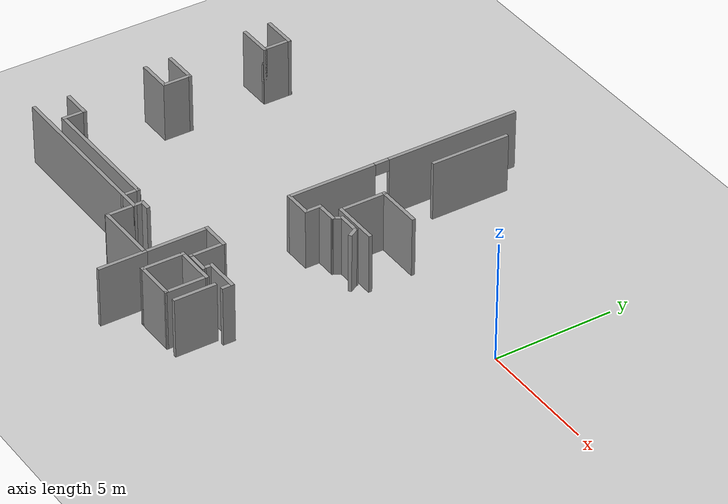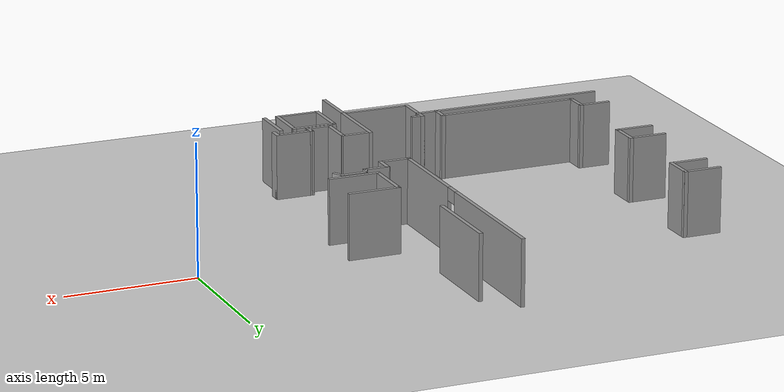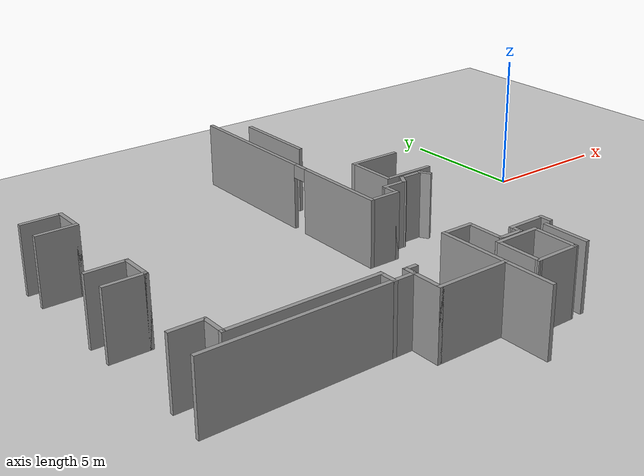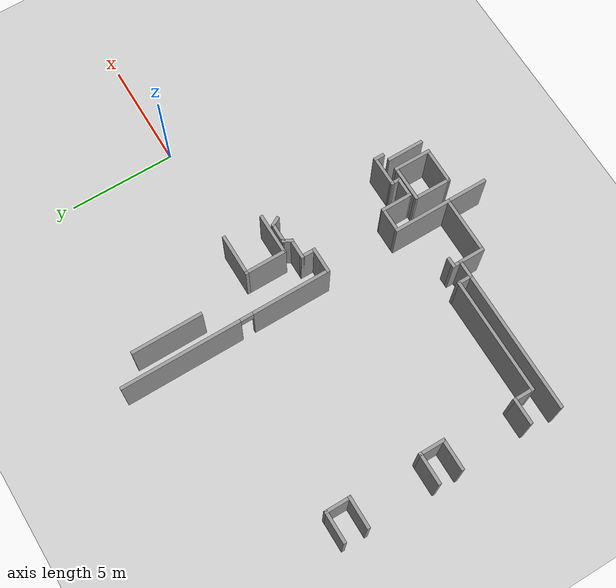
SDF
<sdf version="1.6">
 <world name="default">
  <model name="ground_plane">
   <static>1</static>
   <link name="link">
    <collision name="collision">
     <geometry><plane><normal>0 0 1</normal><size>100 100</size></plane></geometry>
     <surface>
      <contact><collide_bitmask>65535</collide_bitmask></contact>
      <friction><ode><mu>100</mu><mu2>50</mu2></ode></friction>
     </surface>
    </collision>
    <visual name="visual">
     <cast_shadows>0</cast_shadows>
     <geometry><plane><normal>0 0 1</normal><size>100 100</size></plane></geometry>
     <material>
      <script><uri>file://media/materials/scripts/gazebo.material</uri><name>Gazebo/Grey</name></script>
     </material>
    </visual>
   </link>
  </model>
  <model name="Tsudanuma_2-3-with_door">
   <pose>11.7222 12.8329 0 0 -0 0</pose>
   <link name="Wall_1">
    <collision name="Wall_1_Collision">
     <geometry><box><size>7.45363 0.15 2.5</size></box></geometry>
     <pose>0 0 1.25 0 -0 0</pose>
    </collision>
    <visual name="Wall_1_Visual">
     <pose>0 0 1.25 0 -0 0</pose>
     <geometry><box><size>7.45363 0.15 2.5</size></box></geometry>
     <material>
      <script><uri>file://media/materials/scripts/gazebo.material</uri><name>Gazebo/Grey</name></script>
      <ambient>1 1 1 1</ambient>
     </material>
     <meta><layer>0</layer></meta>
    </visual>
    <pose>-27.1739 -20.5586 0 0 -0 -0.00039</pose>
   </link>
   <link name="Wall_143">
    <pose>-20.9574 -10.6327 0 0 -0 -1.5708</pose>
    <visual name="Wall_143_Visual_0">
     <pose>-2.17303 0 1.25 0 -0 0</pose>
     <geometry><box><size>5.65395 0.15 2.5</size></box></geometry>
     <material>
      <script><uri>file://media/materials/scripts/gazebo.material</uri><name>Gazebo/Grey</name></script>
      <ambient>1 1 1 1</ambient>
     </material>
     <meta><layer>0</layer></meta>
    </visual>
    <collision name="Wall_143_Collision_0">
     <geometry><box><size>5.65395 0.15 2.5</size></box></geometry>
     <pose>-2.17303 0 1.25 0 -0 0</pose>
    </collision>
    <visual name="Wall_143_Visual_1">
     <pose>3.12789 0 1.25 0 -0 0</pose>
     <geometry><box><size>3.74423 0.15 2.5</size></box></geometry>
     <material>
      <script><uri>file://media/materials/scripts/gazebo.material</uri><name>Gazebo/Grey</name></script>
      <ambient>1 1 1 1</ambient>
     </material>
     <meta><layer>0</layer></meta>
    </visual>
    <collision name="Wall_143_Collision_1">
     <geometry><box><size>3.74423 0.15 2.5</size></box></geometry>
     <pose>3.12789 0 1.25 0 -0 0</pose>
    </collision>
    <visual name="Wall_143_Visual_2">
     <pose>0.954859 0 2.25 0 -0 0</pose>
     <geometry><box><size>0.601822 0.15 0.5</size></box></geometry>
     <material>
      <script><uri>file://media/materials/scripts/gazebo.material</uri><name>Gazebo/Grey</name></script>
      <ambient>1 1 1 1</ambient>
     </material>
     <meta><layer>0</layer></meta>
    </visual>
    <collision name="Wall_143_Collision_2">
     <geometry><box><size>0.601822 0.15 0.5</size></box></geometry>
     <pose>0.954859 0 2.25 0 -0 0</pose>
    </collision>
   </link>
   <link name="Wall_144">
    <collision name="Wall_144_Collision">
     <geometry><box><size>1.25 0.15 2.5</size></box></geometry>
     <pose>0 0 1.25 0 -0 0</pose>
    </collision>
    <visual name="Wall_144_Visual">
     <pose>0 0 1.25 0 -0 0</pose>
     <geometry><box><size>1.25 0.15 2.5</size></box></geometry>
     <material>
      <script><uri>file://media/materials/scripts/gazebo.material</uri><name>Gazebo/Grey</name></script>
      <ambient>1 1 1 1</ambient>
     </material>
     <meta><layer>0</layer></meta>
    </visual>
    <pose>-20.4074 -15.5577 0 0 -0 0</pose>
   </link>
   <link name="Wall_145">
    <collision name="Wall_145_Collision">
     <geometry><box><size>0.75 0.15 2.5</size></box></geometry>
     <pose>0 0 1.25 0 -0 0</pose>
    </collision>
    <visual name="Wall_145_Visual">
     <pose>0 0 1.25 0 -0 0</pose>
     <geometry><box><size>0.75 0.15 2.5</size></box></geometry>
     <material>
      <script><uri>file://media/materials/scripts/gazebo.material</uri><name>Gazebo/Grey</name></script>
      <ambient>1 1 1 1</ambient>
     </material>
     <meta><layer>0</layer></meta>
    </visual>
    <pose>-19.8574 -15.2577 0 0 -0 1.5708</pose>
   </link>
   <link name="Wall_146">
    <collision name="Wall_146_Collision">
     <geometry><box><size>1 0.15 2.5</size></box></geometry>
     <pose>0 0 1.25 0 -0 0</pose>
    </collision>
    <visual name="Wall_146_Visual">
     <pose>0 0 1.25 0 -0 0</pose>
     <geometry><box><size>1 0.15 2.5</size></box></geometry>
     <material>
      <script><uri>file://media/materials/scripts/gazebo.material</uri><name>Gazebo/Grey</name></script>
      <ambient>1 1 1 1</ambient>
     </material>
     <meta><layer>0</layer></meta>
    </visual>
    <pose>-19.4324 -14.9577 0 0 -0 0</pose>
   </link>
   <link name="Wall_147">
    <collision name="Wall_147_Collision">
     <geometry><box><size>0.5 0.15 2.5</size></box></geometry>
     <pose>0 0 1.25 0 -0 0</pose>
    </collision>
    <visual name="Wall_147_Visual">
     <pose>0 0 1.25 0 -0 0</pose>
     <geometry><box><size>0.5 0.15 2.5</size></box></geometry>
     <material>
      <script><uri>file://media/materials/scripts/gazebo.material</uri><name>Gazebo/Grey</name></script>
      <ambient>1 1 1 1</ambient>
     </material>
     <meta><layer>0</layer></meta>
    </visual>
    <pose>-18.9199 -14.8061 0 0 -0 1.0472</pose>
   </link>
   <link name="Wall_148">
    <collision name="Wall_148_Collision">
     <geometry><box><size>1 0.15 2.5</size></box></geometry>
     <pose>0 0 1.25 0 -0 0</pose>
    </collision>
    <visual name="Wall_148_Visual">
     <pose>0 0 1.25 0 -0 0</pose>
     <geometry><box><size>1 0.15 2.5</size></box></geometry>
     <material>
      <script><uri>file://media/materials/scripts/gazebo.material</uri><name>Gazebo/Grey</name></script>
      <ambient>1 1 1 1</ambient>
     </material>
     <meta><layer>0</layer></meta>
    </visual>
    <pose>-18.4074 -14.6546 0 0 -0 0</pose>
   </link>
   <link name="Wall_149">
    <collision name="Wall_149_Collision">
     <geometry><box><size>0.5 0.15 2.5</size></box></geometry>
     <pose>0 0 1.25 0 -0 0</pose>
    </collision>
    <visual name="Wall_149_Visual">
     <pose>0 0 1.25 0 -0 0</pose>
     <geometry><box><size>0.5 0.15 2.5</size></box></geometry>
     <material>
      <script><uri>file://media/materials/scripts/gazebo.material</uri><name>Gazebo/Grey</name></script>
      <ambient>1 1 1 1</ambient>
     </material>
     <meta><layer>0</layer></meta>
    </visual>
    <pose>-17.8949 -14.8061 0 0 -0 -1.0472</pose>
   </link>
   <link name="Wall_161">
    <collision name="Wall_161_Collision">
     <geometry><box><size>3.34921 0.15 2.5</size></box></geometry>
     <pose>0 0 1.25 0 -0 0</pose>
    </collision>
    <visual name="Wall_161_Visual">
     <pose>0 0 1.25 0 -0 0</pose>
     <geometry><box><size>3.34921 0.15 2.5</size></box></geometry>
     <material>
      <script><uri>file://media/materials/scripts/gazebo.material</uri><name>Gazebo/Grey</name></script>
      <ambient>1 1 1 1</ambient>
     </material>
     <meta><layer>0</layer></meta>
    </visual>
    <pose>-19.8574 -8.40721 0 0 -0 1.5708</pose>
   </link>
   <link name="Wall_176">
    <collision name="Wall_176_Collision">
     <geometry><box><size>2.75 0.15 2.5</size></box></geometry>
     <pose>0 0 1.25 0 -0 0</pose>
    </collision>
    <visual name="Wall_176_Visual">
     <pose>0 0 1.25 0 -0 0</pose>
     <geometry><box><size>2.75 0.15 2.5</size></box></geometry>
     <material>
      <script><uri>file://media/materials/scripts/gazebo.material</uri><name>Gazebo/Grey</name></script>
      <ambient>1 1 1 1</ambient>
     </material>
     <meta><layer>0</layer></meta>
    </visual>
    <pose>-20.9221 -20.36 0 0 -0 1.5708</pose>
   </link>
   <link name="Wall_177">
    <collision name="Wall_177_Collision">
     <geometry><box><size>1.25 0.15 2.5</size></box></geometry>
     <pose>0 0 1.25 0 -0 0</pose>
    </collision>
    <visual name="Wall_177_Visual">
     <pose>0 0 1.25 0 -0 0</pose>
     <geometry><box><size>1.25 0.15 2.5</size></box></geometry>
     <material>
      <script><uri>file://media/materials/scripts/gazebo.material</uri><name>Gazebo/Grey</name></script>
      <ambient>1 1 1 1</ambient>
     </material>
     <meta><layer>0</layer></meta>
    </visual>
    <pose>-20.3721 -19.06 0 0 -0 0</pose>
   </link>
   <link name="Wall_178">
    <collision name="Wall_178_Collision">
     <geometry><box><size>1.49235 0.15 2.5</size></box></geometry>
     <pose>0 0 1.25 0 -0 0</pose>
    </collision>
    <visual name="Wall_178_Visual">
     <pose>0 0 1.25 0 -0 0</pose>
     <geometry><box><size>1.49235 0.15 2.5</size></box></geometry>
     <material>
      <script><uri>file://media/materials/scripts/gazebo.material</uri><name>Gazebo/Grey</name></script>
      <ambient>1 1 1 1</ambient>
     </material>
     <meta><layer>0</layer></meta>
    </visual>
    <pose>-19.8214 -19.7312 0 0 -0 -1.56976</pose>
   </link>
   <link name="Wall_179">
    <collision name="Wall_179_Collision">
     <geometry><box><size>1 0.15 2.5</size></box></geometry>
     <pose>0 0 1.25 0 -0 0</pose>
    </collision>
    <visual name="Wall_179_Visual">
     <pose>0 0 1.25 0 -0 0</pose>
     <geometry><box><size>1 0.15 2.5</size></box></geometry>
     <material>
      <script><uri>file://media/materials/scripts/gazebo.material</uri><name>Gazebo/Grey</name></script>
      <ambient>1 1 1 1</ambient>
     </material>
     <meta><layer>0</layer></meta>
    </visual>
    <pose>-19.3957 -20.4038 0 0 -0 0</pose>
   </link>
   <link name="Wall_180">
    <collision name="Wall_180_Collision">
     <geometry><box><size>0.492355 0.15 2.5</size></box></geometry>
     <pose>0 0 1.25 0 -0 0</pose>
    </collision>
    <visual name="Wall_180_Visual">
     <pose>0 0 1.25 0 -0 0</pose>
     <geometry><box><size>0.492355 0.15 2.5</size></box></geometry>
     <material>
      <script><uri>file://media/materials/scripts/gazebo.material</uri><name>Gazebo/Grey</name></script>
      <ambient>1 1 1 1</ambient>
     </material>
     <meta><layer>0</layer></meta>
    </visual>
    <pose>-18.9714 -20.2312 0 0 -0 1.57485</pose>
   </link>
   <link name="Wall_181">
    <collision name="Wall_181_Collision">
     <geometry><box><size>1.5 0.15 2.5</size></box></geometry>
     <pose>0 0 1.25 0 -0 0</pose>
    </collision>
    <visual name="Wall_181_Visual">
     <pose>0 0 1.25 0 -0 0</pose>
     <geometry><box><size>1.5 0.15 2.5</size></box></geometry>
     <material>
      <script><uri>file://media/materials/scripts/gazebo.material</uri><name>Gazebo/Grey</name></script>
      <ambient>1 1 1 1</ambient>
     </material>
     <meta><layer>0</layer></meta>
    </visual>
    <pose>-18.2971 -20.06 0 0 -0 0</pose>
   </link>
   <link name="Wall_182">
    <collision name="Wall_182_Collision">
     <geometry><box><size>0.502135 0.15 2.5</size></box></geometry>
     <pose>0 0 1.25 0 -0 0</pose>
    </collision>
    <visual name="Wall_182_Visual">
     <pose>0 0 1.25 0 -0 0</pose>
     <geometry><box><size>0.502135 0.15 2.5</size></box></geometry>
     <material>
      <script><uri>file://media/materials/scripts/gazebo.material</uri><name>Gazebo/Grey</name></script>
      <ambient>1 1 1 1</ambient>
     </material>
     <meta><layer>0</layer></meta>
    </visual>
    <pose>-17.6221 -20.2361 0 0 -0 -1.5708</pose>
   </link>
   <link name="Wall_2">
    <collision name="Wall_2_Collision">
     <geometry><box><size>1.25 0.15 2.5</size></box></geometry>
     <pose>0 0 1.25 0 -0 0</pose>
    </collision>
    <visual name="Wall_2_Visual">
     <pose>0 0 1.25 0 -0 0</pose>
     <geometry><box><size>1.25 0.15 2.5</size></box></geometry>
     <material>
      <script><uri>file://media/materials/scripts/gazebo.material</uri><name>Gazebo/Grey</name></script>
      <ambient>1 1 1 1</ambient>
     </material>
     <meta><layer>0</layer></meta>
    </visual>
    <pose>-23.5221 -21.11 0 0 -0 -1.5708</pose>
   </link>
   <link name="Wall_28">
    <collision name="Wall_28_Collision">
     <geometry><box><size>0.5 0.15 2.5</size></box></geometry>
     <pose>0 0 1.25 0 -0 0</pose>
    </collision>
    <visual name="Wall_28_Visual">
     <pose>0 0 1.25 0 -0 0</pose>
     <geometry><box><size>0.5 0.15 2.5</size></box></geometry>
     <material>
      <script><uri>file://media/materials/scripts/gazebo.material</uri><name>Gazebo/Grey</name></script>
      <ambient>1 1 1 1</ambient>
     </material>
     <meta><layer>0</layer></meta>
    </visual>
    <pose>-23.5221 -20.385 0 0 -0 1.5708</pose>
   </link>
   <link name="Wall_29">
    <collision name="Wall_29_Collision">
     <geometry><box><size>0.5 0.15 2.5</size></box></geometry>
     <pose>0 0 1.25 0 -0 0</pose>
    </collision>
    <visual name="Wall_29_Visual">
     <pose>0 0 1.25 0 -0 0</pose>
     <geometry><box><size>0.5 0.15 2.5</size></box></geometry>
     <material>
      <script><uri>file://media/materials/scripts/gazebo.material</uri><name>Gazebo/Grey</name></script>
      <ambient>1 1 1 1</ambient>
     </material>
     <meta><layer>0</layer></meta>
    </visual>
    <pose>-23.3471 -20.21 0 0 -0 0</pose>
   </link>
   <link name="Wall_3">
    <collision name="Wall_3_Collision">
     <geometry><box><size>2.75 0.15 2.5</size></box></geometry>
     <pose>0 0 1.25 0 -0 0</pose>
    </collision>
    <visual name="Wall_3_Visual">
     <pose>0 0 1.25 0 -0 0</pose>
     <geometry><box><size>2.75 0.15 2.5</size></box></geometry>
     <material>
      <script><uri>file://media/materials/scripts/gazebo.material</uri><name>Gazebo/Grey</name></script>
      <ambient>1 1 1 1</ambient>
     </material>
     <meta><layer>0</layer></meta>
    </visual>
    <pose>-22.2221 -21.66 0 0 -0 0</pose>
   </link>
   <link name="Wall_4">
    <collision name="Wall_4_Collision">
     <geometry><box><size>2 0.15 2.5</size></box></geometry>
     <pose>0 0 1.25 0 -0 0</pose>
    </collision>
    <visual name="Wall_4_Visual">
     <pose>0 0 1.25 0 -0 0</pose>
     <geometry><box><size>2 0.15 2.5</size></box></geometry>
     <material>
      <script><uri>file://media/materials/scripts/gazebo.material</uri><name>Gazebo/Grey</name></script>
      <ambient>1 1 1 1</ambient>
     </material>
     <meta><layer>0</layer></meta>
    </visual>
    <pose>-20.9221 -22.585 0 0 -0 -1.5708</pose>
   </link>
   <link name="Wall_451">
    <collision name="Wall_451_Collision">
     <geometry><box><size>0.75 0.15 2.5</size></box></geometry>
     <pose>0 0 1.25 0 -0 0</pose>
    </collision>
    <visual name="Wall_451_Visual">
     <pose>0 0 1.25 0 -0 0</pose>
     <geometry><box><size>0.75 0.15 2.5</size></box></geometry>
     <material>
      <script><uri>file://media/materials/scripts/gazebo.material</uri><name>Gazebo/Grey</name></script>
      <ambient>1 1 1 1</ambient>
     </material>
     <meta><layer>0</layer></meta>
    </visual>
    <pose>-24.2755 -20.2618 0 0 -0 1.5708</pose>
   </link>
   <link name="Wall_452">
    <collision name="Wall_452_Collision">
     <geometry><box><size>5.51306 0.15 2.5</size></box></geometry>
     <pose>0 0 1.25 0 -0 0</pose>
    </collision>
    <visual name="Wall_452_Visual">
     <pose>0 0 1.25 0 -0 0</pose>
     <geometry><box><size>5.51306 0.15 2.5</size></box></geometry>
     <material>
      <script><uri>file://media/materials/scripts/gazebo.material</uri><name>Gazebo/Grey</name></script>
      <ambient>1 1 1 1</ambient>
     </material>
     <meta><layer>0</layer></meta>
    </visual>
    <pose>-26.9569 -19.9746 0 0 -0 -3.14159</pose>
   </link>
   <link name="Wall_453">
    <collision name="Wall_453_Collision">
     <geometry><box><size>1 0.15 2.5</size></box></geometry>
     <pose>0 0 1.25 0 -0 0</pose>
    </collision>
    <visual name="Wall_453_Visual">
     <pose>0 0 1.25 0 -0 0</pose>
     <geometry><box><size>1 0.15 2.5</size></box></geometry>
     <material>
      <script><uri>file://media/materials/scripts/gazebo.material</uri><name>Gazebo/Grey</name></script>
      <ambient>1 1 1 1</ambient>
     </material>
     <meta><layer>0</layer></meta>
    </visual>
    <pose>-29.6383 -19.5496 0 0 -0 1.5708</pose>
   </link>
   <link name="Wall_454">
    <collision name="Wall_454_Collision">
     <geometry><box><size>1.25 0.15 2.5</size></box></geometry>
     <pose>0 0 1.25 0 -0 0</pose>
    </collision>
    <visual name="Wall_454_Visual">
     <pose>0 0 1.25 0 -0 0</pose>
     <geometry><box><size>1.25 0.15 2.5</size></box></geometry>
     <material>
      <script><uri>file://media/materials/scripts/gazebo.material</uri><name>Gazebo/Grey</name></script>
      <ambient>1 1 1 1</ambient>
     </material>
     <meta><layer>0</layer></meta>
    </visual>
    <pose>-30.1883 -19.1246 0 0 -0 3.14159</pose>
   </link>
   <link name="Wall_456">
    <collision name="Wall_456_Collision">
     <geometry><box><size>1.5 0.15 2.5</size></box></geometry>
     <pose>0 0 1.25 0 -0 0</pose>
    </collision>
    <visual name="Wall_456_Visual">
     <pose>0 0 1.25 0 -0 0</pose>
     <geometry><box><size>1.5 0.15 2.5</size></box></geometry>
     <material>
      <script><uri>file://media/materials/scripts/gazebo.material</uri><name>Gazebo/Grey</name></script>
      <ambient>1 1 1 1</ambient>
     </material>
     <meta><layer>0</layer></meta>
    </visual>
    <pose>-30.1953 -15.7191 0 0 -0 0</pose>
   </link>
   <link name="Wall_457">
    <collision name="Wall_457_Collision">
     <geometry><box><size>1.25 0.15 2.5</size></box></geometry>
     <pose>0 0 1.25 0 -0 0</pose>
    </collision>
    <visual name="Wall_457_Visual">
     <pose>0 0 1.25 0 -0 0</pose>
     <geometry><box><size>1.25 0.15 2.5</size></box></geometry>
     <material>
      <script><uri>file://media/materials/scripts/gazebo.material</uri><name>Gazebo/Grey</name></script>
      <ambient>1 1 1 1</ambient>
     </material>
     <meta><layer>0</layer></meta>
    </visual>
    <pose>-29.5203 -15.1691 0 0 -0 1.5708</pose>
   </link>
   <link name="Wall_458">
    <collision name="Wall_458_Collision">
     <geometry><box><size>1.5 0.15 2.5</size></box></geometry>
     <pose>0 0 1.25 0 -0 0</pose>
    </collision>
    <visual name="Wall_458_Visual">
     <pose>0 0 1.25 0 -0 0</pose>
     <geometry><box><size>1.5 0.15 2.5</size></box></geometry>
     <material>
      <script><uri>file://media/materials/scripts/gazebo.material</uri><name>Gazebo/Grey</name></script>
      <ambient>1 1 1 1</ambient>
     </material>
     <meta><layer>0</layer></meta>
    </visual>
    <pose>-30.1953 -14.6191 0 0 -0 3.14159</pose>
   </link>
   <link name="Wall_460">
    <collision name="Wall_460_Collision">
     <geometry><box><size>1.5 0.15 2.5</size></box></geometry>
     <pose>0 0 1.25 0 -0 0</pose>
    </collision>
    <visual name="Wall_460_Visual">
     <pose>0 0 1.25 0 -0 0</pose>
     <geometry><box><size>1.5 0.15 2.5</size></box></geometry>
     <material>
      <script><uri>file://media/materials/scripts/gazebo.material</uri><name>Gazebo/Grey</name></script>
      <ambient>1 1 1 1</ambient>
     </material>
     <meta><layer>0</layer></meta>
    </visual>
    <pose>-30.1953 -11.2881 0 0 -0 0</pose>
   </link>
   <link name="Wall_461">
    <collision name="Wall_461_Collision">
     <geometry><box><size>1.25 0.15 2.5</size></box></geometry>
     <pose>0 0 1.25 0 -0 0</pose>
    </collision>
    <visual name="Wall_461_Visual">
     <pose>0 0 1.25 0 -0 0</pose>
     <geometry><box><size>1.25 0.15 2.5</size></box></geometry>
     <material>
      <script><uri>file://media/materials/scripts/gazebo.material</uri><name>Gazebo/Grey</name></script>
      <ambient>1 1 1 1</ambient>
     </material>
     <meta><layer>0</layer></meta>
    </visual>
    <pose>-29.5203 -10.7381 0 0 -0 1.5708</pose>
   </link>
   <link name="Wall_462">
    <collision name="Wall_462_Collision">
     <geometry><box><size>1.5 0.15 2.5</size></box></geometry>
     <pose>0 0 1.25 0 -0 0</pose>
    </collision>
    <visual name="Wall_462_Visual">
     <pose>0 0 1.25 0 -0 0</pose>
     <geometry><box><size>1.5 0.15 2.5</size></box></geometry>
     <material>
      <script><uri>file://media/materials/scripts/gazebo.material</uri><name>Gazebo/Grey</name></script>
      <ambient>1 1 1 1</ambient>
     </material>
     <meta><layer>0</layer></meta>
    </visual>
    <pose>-30.1953 -10.1881 0 0 -0 3.14159</pose>
   </link>
   <link name="Wall_539">
    <collision name="Wall_539_Collision">
     <geometry><box><size>2 0.15 2.5</size></box></geometry>
     <pose>0 0 1.25 0 -0 0</pose>
    </collision>
    <visual name="Wall_539_Visual">
     <pose>0 0 1.25 0 -0 0</pose>
     <geometry><box><size>2 0.15 2.5</size></box></geometry>
     <material>
      <script><uri>file://media/materials/scripts/gazebo.material</uri><name>Gazebo/Grey</name></script>
      <ambient>1 1 1 1</ambient>
     </material>
     <meta><layer>0</layer></meta>
    </visual>
    <pose>-18.3408 -14.4242 0 0 -0 0</pose>
   </link>
   <link name="Wall_541">
    <collision name="Wall_541_Collision">
     <geometry><box><size>2 0.15 2.5</size></box></geometry>
     <pose>0 0 1.25 0 -0 0</pose>
    </collision>
    <visual name="Wall_541_Visual">
     <pose>0 0 1.25 0 -0 0</pose>
     <geometry><box><size>2 0.15 2.5</size></box></geometry>
     <material>
      <script><uri>file://media/materials/scripts/gazebo.material</uri><name>Gazebo/Grey</name></script>
      <ambient>1 1 1 1</ambient>
     </material>
     <meta><layer>0</layer></meta>
    </visual>
    <pose>-18.3408 -12.5742 0 0 -0 3.14159</pose>
   </link>
   <link name="Wall_542">
    <collision name="Wall_542_Collision">
     <geometry><box><size>2 0.15 2.5</size></box></geometry>
     <pose>0 0 1.25 0 -0 0</pose>
    </collision>
    <visual name="Wall_542_Visual">
     <pose>0 0 1.25 0 -0 0</pose>
     <geometry><box><size>2 0.15 2.5</size></box></geometry>
     <material>
      <script><uri>file://media/materials/scripts/gazebo.material</uri><name>Gazebo/Grey</name></script>
      <ambient>1 1 1 1</ambient>
     </material>
     <meta><layer>0</layer></meta>
    </visual>
    <pose>-19.2658 -13.4992 0 0 -0 -1.5708</pose>
   </link>
   <link name="Wall_549">
    <collision name="Wall_549_Collision">
     <geometry><box><size>1.75 0.15 2.5</size></box></geometry>
     <pose>0 0 1.25 0 -0 0</pose>
    </collision>
    <visual name="Wall_549_Visual">
     <pose>0 0 1.25 0 -0 0</pose>
     <geometry><box><size>1.75 0.15 2.5</size></box></geometry>
     <material>
      <script><uri>file://media/materials/scripts/gazebo.material</uri><name>Gazebo/Grey</name></script>
      <ambient>1 1 1 1</ambient>
     </material>
     <meta><layer>0</layer></meta>
    </visual>
    <pose>-19.286 -20.5805 0 0 -0 0</pose>
   </link>
   <link name="Wall_550">
    <collision name="Wall_550_Collision">
     <geometry><box><size>1.79461 0.15 2.5</size></box></geometry>
     <pose>0 0 1.25 0 -0 0</pose>
    </collision>
    <visual name="Wall_550_Visual">
     <pose>0 0 1.25 0 -0 0</pose>
     <geometry><box><size>1.79461 0.15 2.5</size></box></geometry>
     <material>
      <script><uri>file://media/materials/scripts/gazebo.material</uri><name>Gazebo/Grey</name></script>
      <ambient>1 1 1 1</ambient>
     </material>
     <meta><layer>0</layer></meta>
    </visual>
    <pose>-18.4901 -21.4014 0 0 -0 -1.57588</pose>
   </link>
   <link name="Wall_551">
    <collision name="Wall_551_Collision">
     <geometry><box><size>1.75 0.15 2.5</size></box></geometry>
     <pose>0 0 1.25 0 -0 0</pose>
    </collision>
    <visual name="Wall_551_Visual">
     <pose>0 0 1.25 0 -0 0</pose>
     <geometry><box><size>1.75 0.15 2.5</size></box></geometry>
     <material>
      <script><uri>file://media/materials/scripts/gazebo.material</uri><name>Gazebo/Grey</name></script>
      <ambient>1 1 1 1</ambient>
     </material>
     <meta><layer>0</layer></meta>
    </visual>
    <pose>-19.2943 -22.2237 0 0 -0 3.14159</pose>
   </link>
   <link name="Wall_552">
    <collision name="Wall_552_Collision">
     <geometry><box><size>1.79461 0.15 2.5</size></box></geometry>
     <pose>0 0 1.25 0 -0 0</pose>
    </collision>
    <visual name="Wall_552_Visual">
     <pose>0 0 1.25 0 -0 0</pose>
     <geometry><box><size>1.79461 0.15 2.5</size></box></geometry>
     <material>
      <script><uri>file://media/materials/scripts/gazebo.material</uri><name>Gazebo/Grey</name></script>
      <ambient>1 1 1 1</ambient>
     </material>
     <meta><layer>0</layer></meta>
    </visual>
    <pose>-20.0901 -21.4014 0 0 -0 1.56571</pose>
   </link>
   <link name="Wall_557">
    <collision name="Wall_557_Collision">
     <geometry><box><size>1.75 0.15 2.5</size></box></geometry>
     <pose>0 0 1.25 0 -0 0</pose>
    </collision>
    <visual name="Wall_557_Visual">
     <pose>0 0 1.25 0 -0 0</pose>
     <geometry><box><size>1.75 0.15 2.5</size></box></geometry>
     <material>
      <script><uri>file://media/materials/scripts/gazebo.material</uri><name>Gazebo/Grey</name></script>
      <ambient>1 1 1 1</ambient>
     </material>
     <meta><layer>0</layer></meta>
    </visual>
    <pose>-17.9499 -21.3833 0 0 -0 -1.5708</pose>
   </link>
   <static>1</static>
  </model>
 </world>
</sdf>
